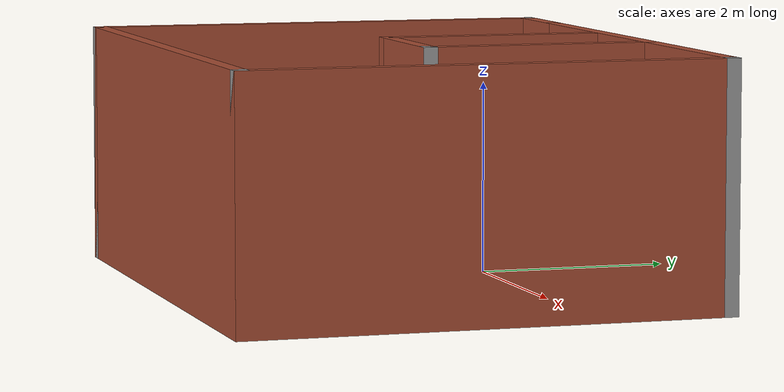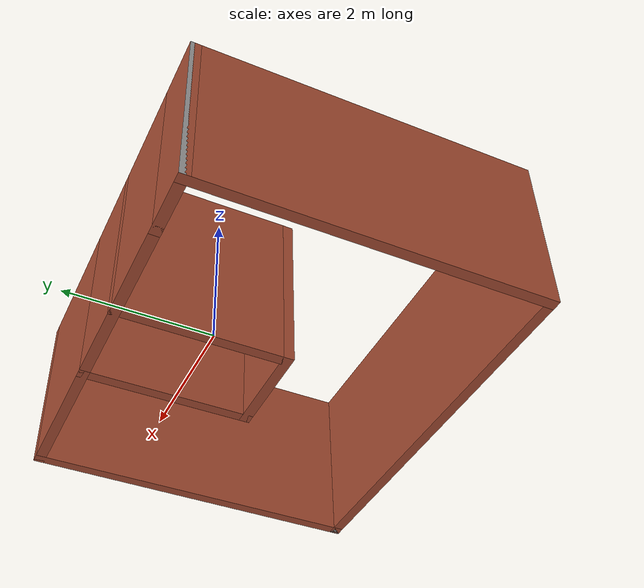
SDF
<?xml version='1.0'?>
<sdf version='1.6'>
  <model name='model'>
    <pose frame=''>0.661983 -1.1407 0 0 -0 0</pose>
    <link name='Wall_0'>
      <collision name='Wall_0_Collision'>
        <geometry>
          <box>
            <size>3 0.15 2.5</size>
          </box>
        </geometry>
        <pose frame=''>0 0 1.25 0 -0 0</pose>
      </collision>
      <visual name='Wall_0_Visual'>
        <pose frame=''>0 0 1.25 0 -0 0</pose>
        <geometry>
          <box>
            <size>3 0.15 2.5</size>
          </box>
        </geometry>
        <material>
          <script>
            <uri>file://media/materials/scripts/gazebo.material</uri>
            <name>Gazebo/Bricks</name>
          </script>
          <ambient>1 1 1 1</ambient>
        </material>
      </visual>
      <pose frame=''>-0.65 2.425 0 0 -0 0</pose>
    </link>
    <link name='Wall_10'>
      <collision name='Wall_10_Collision'>
        <geometry>
          <box>
            <size>2.3 0.15 2.5</size>
          </box>
        </geometry>
        <pose frame=''>0 0 1.25 0 -0 0</pose>
      </collision>
      <visual name='Wall_10_Visual'>
        <pose frame=''>0 0 1.25 0 -0 0</pose>
        <geometry>
          <box>
            <size>2.3 0.15 2.5</size>
          </box>
        </geometry>
        <material>
          <script>
            <uri>file://media/materials/scripts/gazebo.material</uri>
            <name>Gazebo/Bricks</name>
          </script>
          <ambient>1 1 1 1</ambient>
        </material>
      </visual>
      <pose frame=''>1.85 2.425 0 0 -0 3.14159</pose>
    </link>
    <link name='Wall_11'>
      <collision name='Wall_11_Collision'>
        <geometry>
          <box>
            <size>2.5 0.15 2.5</size>
          </box>
        </geometry>
        <pose frame=''>0 0 1.25 0 -0 0</pose>
      </collision>
      <visual name='Wall_11_Visual'>
        <pose frame=''>0 0 1.25 0 -0 0</pose>
        <geometry>
          <box>
            <size>2.5 0.15 2.5</size>
          </box>
        </geometry>
        <material>
          <script>
            <uri>file://media/materials/scripts/gazebo.material</uri>
            <name>Gazebo/Bricks</name>
          </script>
          <ambient>1 1 1 1</ambient>
        </material>
      </visual>
      <pose frame=''>0.775 1.25 0 0 0 -1.5708</pose>
    </link>
    <link name='Wall_12'>
      <collision name='Wall_12_Collision'>
        <geometry>
          <box>
            <size>0.15 0.15 2.5</size>
          </box>
        </geometry>
        <pose frame=''>0 0 1.25 0 -0 0</pose>
      </collision>
      <visual name='Wall_12_Visual'>
        <pose frame=''>0 0 1.25 0 -0 0</pose>
        <geometry>
          <box>
            <size>0.15 0.15 2.5</size>
          </box>
        </geometry>
        <material>
          <script>
            <uri>file://media/materials/scripts/gazebo.material</uri>
            <name>Gazebo/Grey</name>
          </script>
          <ambient>1 1 1 1</ambient>
        </material>
      </visual>
      <pose frame=''>0.775 0.075 0 0 -0 0</pose>
    </link>
    <link name='Wall_13'>
      <collision name='Wall_13_Collision'>
        <geometry>
          <box>
            <size>1.5 0.15 2.5</size>
          </box>
        </geometry>
        <pose frame=''>0 0 1.25 0 -0 0</pose>
      </collision>
      <visual name='Wall_13_Visual'>
        <pose frame=''>0 0 1.25 0 -0 0</pose>
        <geometry>
          <box>
            <size>1.5 0.15 2.5</size>
          </box>
        </geometry>
        <material>
          <script>
            <uri>file://media/materials/scripts/gazebo.material</uri>
            <name>Gazebo/Bricks</name>
          </script>
          <ambient>1 1 1 1</ambient>
        </material>
      </visual>
      <pose frame=''>0.1 0.075 0 0 -0 3.14159</pose>
    </link>
    <link name='Wall_14'>
      <collision name='Wall_14_Collision'>
        <geometry>
          <box>
            <size>2.5 0.15 2.5</size>
          </box>
        </geometry>
        <pose frame=''>0 0 1.25 0 -0 0</pose>
      </collision>
      <visual name='Wall_14_Visual'>
        <pose frame=''>0 0 1.25 0 -0 0</pose>
        <geometry>
          <box>
            <size>2.5 0.15 2.5</size>
          </box>
        </geometry>
        <material>
          <script>
            <uri>file://media/materials/scripts/gazebo.material</uri>
            <name>Gazebo/Bricks</name>
          </script>
          <ambient>1 1 1 1</ambient>
        </material>
      </visual>
      <pose frame=''>-0.575 1.25 0 0 -0 1.5708</pose>
    </link>
    <link name='Wall_2'>
      <collision name='Wall_2_Collision'>
        <geometry>
          <box>
            <size>1 0.15 2.5</size>
          </box>
        </geometry>
        <pose frame=''>0 0 1.25 0 -0 0</pose>
      </collision>
      <visual name='Wall_2_Visual'>
        <pose frame=''>0 0 1.25 0 -0 0</pose>
        <geometry>
          <box>
            <size>1 0.15 2.5</size>
          </box>
        </geometry>
        <material>
          <script>
            <uri>file://media/materials/scripts/gazebo.material</uri>
            <name>Gazebo/Bricks</name>
          </script>
          <ambient>1 1 1 1</ambient>
        </material>
      </visual>
      <pose frame=''>-2.5 2.425 0 0 -0 3.14159</pose>
    </link>
    <link name='Wall_3'>
      <collision name='Wall_3_Collision'>
        <geometry>
          <box>
            <size>0.15 0.15 2.5</size>
          </box>
        </geometry>
        <pose frame=''>0 0 1.25 0 -0 0</pose>
      </collision>
      <visual name='Wall_3_Visual'>
        <pose frame=''>0 0 1.25 0 -0 0</pose>
        <geometry>
          <box>
            <size>0.15 0.15 2.5</size>
          </box>
        </geometry>
        <material>
          <script>
            <uri>file://media/materials/scripts/gazebo.material</uri>
            <name>Gazebo/Grey</name>
          </script>
          <ambient>1 1 1 1</ambient>
        </material>
      </visual>
      <pose frame=''>-2.925 2.425 0 0 -0 0</pose>
    </link>
    <link name='Wall_4'>
      <collision name='Wall_4_Collision'>
        <geometry>
          <box>
            <size>5 0.15 2.5</size>
          </box>
        </geometry>
        <pose frame=''>0 0 1.25 0 -0 0</pose>
      </collision>
      <visual name='Wall_4_Visual'>
        <pose frame=''>0 0 1.25 0 -0 0</pose>
        <geometry>
          <box>
            <size>5 0.15 2.5</size>
          </box>
        </geometry>
        <material>
          <script>
            <uri>file://media/materials/scripts/gazebo.material</uri>
            <name>Gazebo/Bricks</name>
          </script>
          <ambient>1 1 1 1</ambient>
        </material>
      </visual>
      <pose frame=''>-2.925 0 0 0 0 -1.5708</pose>
    </link>
    <link name='Wall_5'>
      <collision name='Wall_5_Collision'>
        <geometry>
          <box>
            <size>0.15 0.15 2.5</size>
          </box>
        </geometry>
        <pose frame=''>0 0 1.25 0 -0 0</pose>
      </collision>
      <visual name='Wall_5_Visual'>
        <pose frame=''>0 0 1.25 0 -0 0</pose>
        <geometry>
          <box>
            <size>0.15 0.15 2.5</size>
          </box>
        </geometry>
        <material>
          <script>
            <uri>file://media/materials/scripts/gazebo.material</uri>
            <name>Gazebo/Grey</name>
          </script>
          <ambient>1 1 1 1</ambient>
        </material>
      </visual>
      <pose frame=''>-2.925 -2.425 0 0 -0 0</pose>
    </link>
    <link name='Wall_6'>
      <collision name='Wall_6_Collision'>
        <geometry>
          <box>
            <size>6 0.15 2.5</size>
          </box>
        </geometry>
        <pose frame=''>0 0 1.25 0 -0 0</pose>
      </collision>
      <visual name='Wall_6_Visual'>
        <pose frame=''>0 0 1.25 0 -0 0</pose>
        <geometry>
          <box>
            <size>6 0.15 2.5</size>
          </box>
        </geometry>
        <material>
          <script>
            <uri>file://media/materials/scripts/gazebo.material</uri>
            <name>Gazebo/Bricks</name>
          </script>
          <ambient>1 1 1 1</ambient>
        </material>
      </visual>
      <pose frame=''>0 -2.425 0 0 -0 0</pose>
    </link>
    <link name='Wall_7'>
      <collision name='Wall_7_Collision'>
        <geometry>
          <box>
            <size>0.15 0.15 2.5</size>
          </box>
        </geometry>
        <pose frame=''>0 0 1.25 0 -0 0</pose>
      </collision>
      <visual name='Wall_7_Visual'>
        <pose frame=''>0 0 1.25 0 -0 0</pose>
        <geometry>
          <box>
            <size>0.15 0.15 2.5</size>
          </box>
        </geometry>
        <material>
          <script>
            <uri>file://media/materials/scripts/gazebo.material</uri>
            <name>Gazebo/Grey</name>
          </script>
          <ambient>1 1 1 1</ambient>
        </material>
      </visual>
      <pose frame=''>2.925 -2.425 0 0 -0 0</pose>
    </link>
    <link name='Wall_8'>
      <collision name='Wall_8_Collision'>
        <geometry>
          <box>
            <size>5 0.15 2.5</size>
          </box>
        </geometry>
        <pose frame=''>0 0 1.25 0 -0 0</pose>
      </collision>
      <visual name='Wall_8_Visual'>
        <pose frame=''>0 0 1.25 0 -0 0</pose>
        <geometry>
          <box>
            <size>5 0.15 2.5</size>
          </box>
        </geometry>
        <material>
          <script>
            <uri>file://media/materials/scripts/gazebo.material</uri>
            <name>Gazebo/Bricks</name>
          </script>
          <ambient>1 1 1 1</ambient>
        </material>
      </visual>
      <pose frame=''>2.925 0 0 0 -0 1.5708</pose>
    </link>
    <link name='Wall_9'>
      <collision name='Wall_9_Collision'>
        <geometry>
          <box>
            <size>0.15 0.15 2.5</size>
          </box>
        </geometry>
        <pose frame=''>0 0 1.25 0 -0 0</pose>
      </collision>
      <visual name='Wall_9_Visual'>
        <pose frame=''>0 0 1.25 0 -0 0</pose>
        <geometry>
          <box>
            <size>0.15 0.15 2.5</size>
          </box>
        </geometry>
        <material>
          <script>
            <uri>file://media/materials/scripts/gazebo.material</uri>
            <name>Gazebo/Grey</name>
          </script>
          <ambient>1 1 1 1</ambient>
        </material>
      </visual>
      <pose frame=''>2.925 2.425 0 0 -0 0</pose>
    </link>
    <static>1</static>
  </model>
</sdf>
